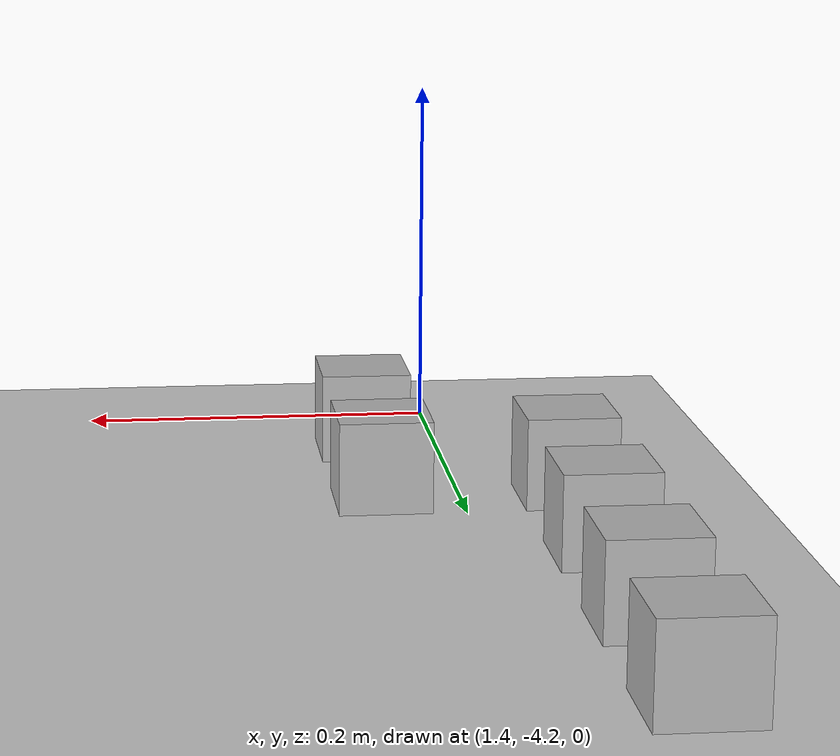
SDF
<sdf version="1.4">
 <world name="default">
  <model name="ground_plane">
   <static>1</static>
   <link name="link">
    <collision name="collision">
     <geometry><plane><normal>0 0 1</normal><size>100 100</size></plane></geometry>
     <surface><friction><ode><mu>100</mu><mu2>50</mu2></ode></friction></surface>
    </collision>
    <visual name="visual">
     <cast_shadows>0</cast_shadows>
     <geometry><plane><normal>0 0 1</normal><size>100 100</size></plane></geometry>
     <material>
      <script><uri>file://media/materials/scripts/gazebo.material</uri><name>Gazebo/Grey</name></script>
     </material>
    </visual>
    <velocity_decay><linear>0</linear><angular>0</angular></velocity_decay>
   </link>
  </model>
  <model name="at194">
   <static>0</static>
   <link name="link">
    <inertial>
     <mass>0.01</mass>
     <inertia><ixx>4e-05</ixx><ixy>0</ixy><ixz>0</ixz><iyy>4e-05</iyy><iyz>0</iyz><izz>4e-05</izz></inertia>
    </inertial>
    <visual name="visual">
     <transparency>0.1</transparency>
     <geometry><box><size>0.05 0.05 0.05</size></box></geometry>
     <material>
      <script>
       <uri>model://at0/materials/scripts</uri>
       <uri>model://at0/materials/textures</uri>
       <name>at0/Diffuse</name>
      </script>
     </material>
    </visual>
    <collision name="collision">
     <geometry><box><size>0.05 0.05 0.05</size></box></geometry>
     <surface><friction><ode><mu>0.8</mu><mu2>0.7</mu2></ode></friction></surface>
    </collision>
    <velocity_decay><linear>0</linear><angular>0</angular></velocity_decay>
   </link>
   <pose>1.44324 -4.12605 0.024993 -2.9e-05 -2.9e-05 1e-06</pose>
  </model>
  <model name="at201">
   <static>0</static>
   <link name="link">
    <inertial>
     <mass>0.01</mass>
     <inertia><ixx>4e-05</ixx><ixy>0</ixy><ixz>0</ixz><iyy>4e-05</iyy><iyz>0</iyz><izz>4e-05</izz></inertia>
    </inertial>
    <visual name="visual">
     <transparency>0.1</transparency>
     <geometry><box><size>0.05 0.05 0.05</size></box></geometry>
     <material>
      <script>
       <uri>model://at0/materials/scripts</uri>
       <uri>model://at0/materials/textures</uri>
       <name>at0/Diffuse</name>
      </script>
     </material>
    </visual>
    <collision name="collision">
     <geometry><box><size>0.05 0.05 0.05</size></box></geometry>
     <surface><friction><ode><mu>0.8</mu><mu2>0.7</mu2></ode></friction></surface>
    </collision>
    <velocity_decay><linear>0</linear><angular>0</angular></velocity_decay>
   </link>
   <pose>1.34324 -4.02605 0.024997 2.9e-05 2.9e-05 1e-06</pose>
  </model>
  <model name="at202">
   <static>0</static>
   <link name="link">
    <inertial>
     <mass>0.01</mass>
     <inertia><ixx>4e-05</ixx><ixy>0</ixy><ixz>0</ixz><iyy>4e-05</iyy><iyz>0</iyz><izz>4e-05</izz></inertia>
    </inertial>
    <visual name="visual">
     <transparency>0.1</transparency>
     <geometry><box><size>0.05 0.05 0.05</size></box></geometry>
     <material>
      <script>
       <uri>model://at0/materials/scripts</uri>
       <uri>model://at0/materials/textures</uri>
       <name>at0/Diffuse</name>
      </script>
     </material>
    </visual>
    <collision name="collision">
     <geometry><box><size>0.05 0.05 0.05</size></box></geometry>
     <surface><friction><ode><mu>0.8</mu><mu2>0.7</mu2></ode></friction></surface>
    </collision>
    <velocity_decay><linear>0</linear><angular>0</angular></velocity_decay>
   </link>
   <pose>1.44324 -4.02605 0.024993 -2.9e-05 -2.9e-05 1e-06</pose>
  </model>
  <model name="at209">
   <static>0</static>
   <link name="link">
    <inertial>
     <mass>0.01</mass>
     <inertia><ixx>4e-05</ixx><ixy>0</ixy><ixz>0</ixz><iyy>4e-05</iyy><iyz>0</iyz><izz>4e-05</izz></inertia>
    </inertial>
    <visual name="visual">
     <transparency>0.1</transparency>
     <geometry><box><size>0.05 0.05 0.05</size></box></geometry>
     <material>
      <script>
       <uri>model://at0/materials/scripts</uri>
       <uri>model://at0/materials/textures</uri>
       <name>at0/Diffuse</name>
      </script>
     </material>
    </visual>
    <collision name="collision">
     <geometry><box><size>0.05 0.05 0.05</size></box></geometry>
     <surface><friction><ode><mu>0.8</mu><mu2>0.7</mu2></ode></friction></surface>
    </collision>
    <velocity_decay><linear>0</linear><angular>0</angular></velocity_decay>
   </link>
   <pose>1.34324 -3.92605 0.024997 2.9e-05 2.9e-05 1e-06</pose>
  </model>
  <model name="at217">
   <static>0</static>
   <link name="link">
    <inertial>
     <mass>0.01</mass>
     <inertia><ixx>4e-05</ixx><ixy>0</ixy><ixz>0</ixz><iyy>4e-05</iyy><iyz>0</iyz><izz>4e-05</izz></inertia>
    </inertial>
    <visual name="visual">
     <transparency>0.1</transparency>
     <geometry><box><size>0.05 0.05 0.05</size></box></geometry>
     <material>
      <script>
       <uri>model://at0/materials/scripts</uri>
       <uri>model://at0/materials/textures</uri>
       <name>at0/Diffuse</name>
      </script>
     </material>
    </visual>
    <collision name="collision">
     <geometry><box><size>0.05 0.05 0.05</size></box></geometry>
     <surface><friction><ode><mu>0.8</mu><mu2>0.7</mu2></ode></friction></surface>
    </collision>
    <velocity_decay><linear>0</linear><angular>0</angular></velocity_decay>
   </link>
   <pose>1.34324 -3.82605 0.024993 -2.9e-05 -2.9e-05 1e-06</pose>
  </model>
  <model name="at225">
   <static>0</static>
   <link name="link">
    <inertial>
     <mass>0.01</mass>
     <inertia><ixx>4e-05</ixx><ixy>0</ixy><ixz>0</ixz><iyy>4e-05</iyy><iyz>0</iyz><izz>4e-05</izz></inertia>
    </inertial>
    <visual name="visual">
     <transparency>0.1</transparency>
     <geometry><box><size>0.05 0.05 0.05</size></box></geometry>
     <material>
      <script>
       <uri>model://at0/materials/scripts</uri>
       <uri>model://at0/materials/textures</uri>
       <name>at0/Diffuse</name>
      </script>
     </material>
    </visual>
    <collision name="collision">
     <geometry><box><size>0.05 0.05 0.05</size></box></geometry>
     <surface><friction><ode><mu>0.8</mu><mu2>0.7</mu2></ode></friction></surface>
    </collision>
    <velocity_decay><linear>0</linear><angular>0</angular></velocity_decay>
   </link>
   <pose>1.34324 -3.72605 0.024993 -2.9e-05 -2.9e-05 1e-06</pose>
  </model>
 </world>
</sdf>
